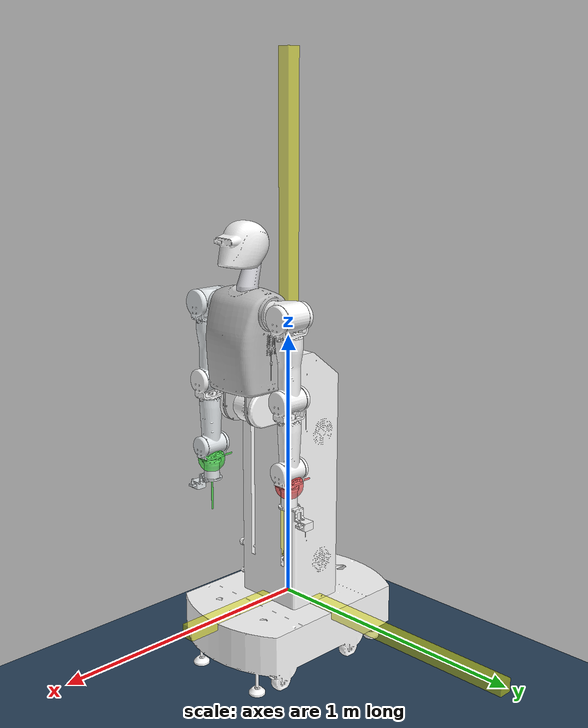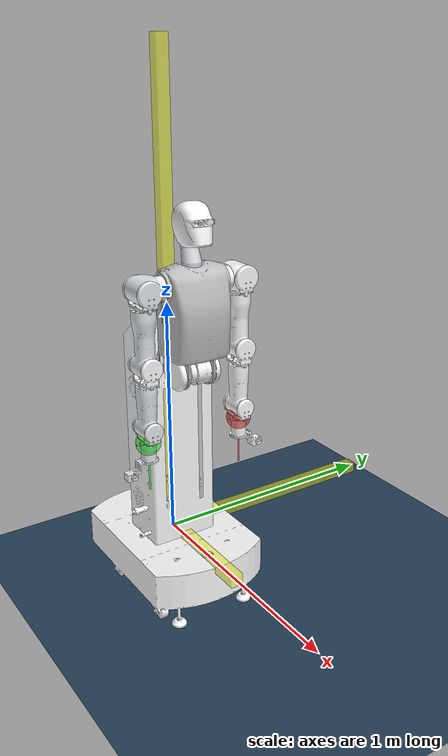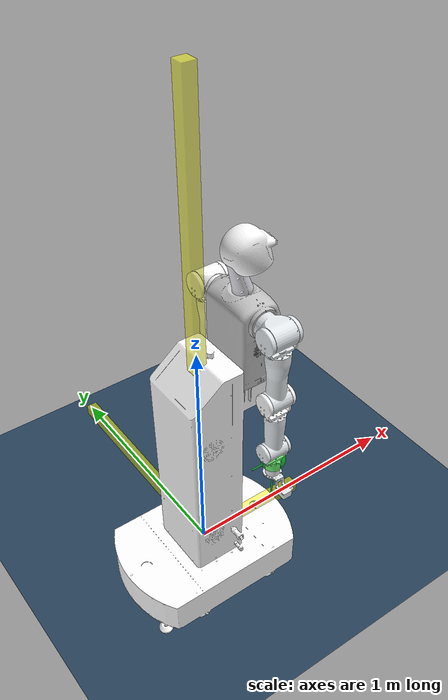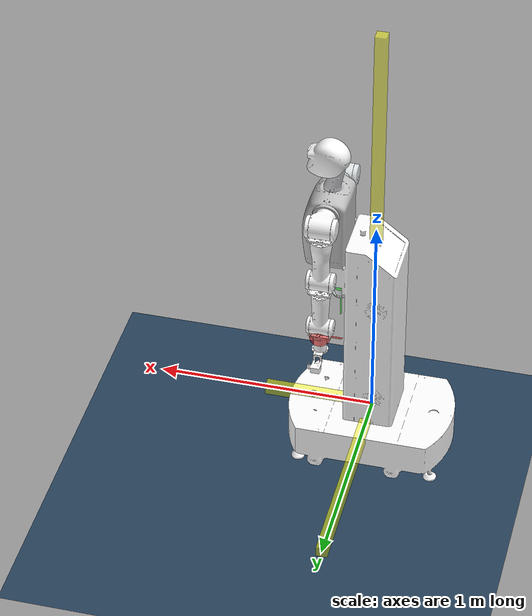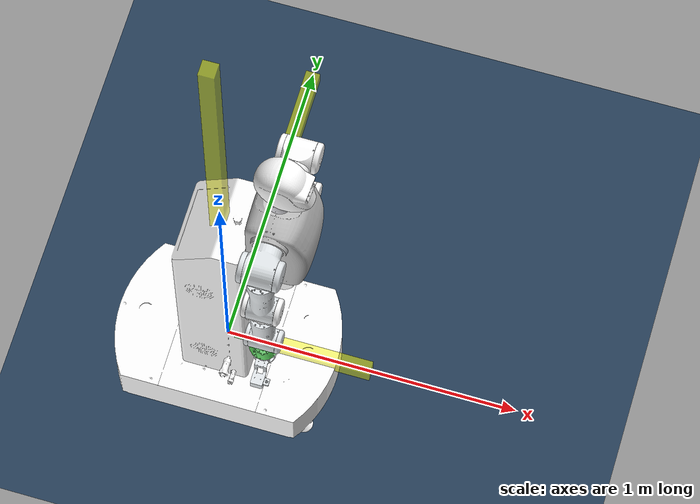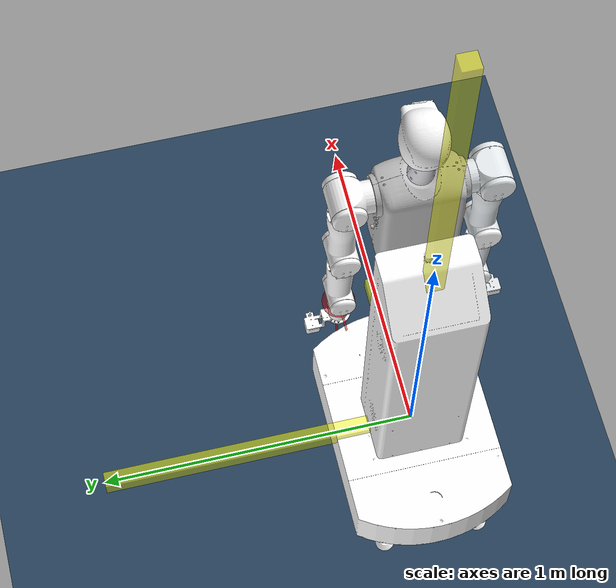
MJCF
<?xml version='1.0' encoding='utf-8'?>
<mujoco model="O2URDFC.SLDASM">
  <compiler angle="radian" />

  <asset>
    <mesh name="base_link" content_type="model/stl" file="base_link.STL" />
    <mesh name="Link1" content_type="model/stl" file="Link1.STL" />
    <mesh name="Link2" content_type="model/stl" file="Link2.STL" />
    <mesh name="Link3" content_type="model/stl" file="Link3.STL" />
    <mesh name="Link4" content_type="model/stl" file="Link4.STL" />
    <mesh name="Link5" content_type="model/stl" file="Link5.STL" />
    <mesh name="Link6" content_type="model/stl" file="Link6.STL" />
    <mesh name="Link7" content_type="model/stl" file="Link7.STL" />
    <mesh name="Link8" content_type="model/stl" file="Link8.STL" />
    <mesh name="Link9" content_type="model/stl" file="Link9.STL" />
    <mesh name="Link10" content_type="model/stl" file="Link10.STL" />
    <mesh name="Link11" content_type="model/stl" file="Link11.STL" />
    <mesh name="Link12" content_type="model/stl" file="Link12.STL" />
    <mesh name="Link13" content_type="model/stl" file="Link13.STL" />
    <mesh name="Link14" content_type="model/stl" file="Link14.STL" />
    <mesh name="Link15" content_type="model/stl" file="Link15.STL" />
    <mesh name="Link16" content_type="model/stl" file="Link16.STL" />
    <mesh name="Link17" content_type="model/stl" file="Link17.STL" />
  </asset>

  <worldbody>
    <site name="world_site_x_axis" pos="0.25 0 0" size="0.25 0.025 0.025"
      rgba="1 1 0 0.5" type="box" />
    <site name="world_site_y_axis" pos="0 0.5 0" size="0.025 0.5 0.025"
      rgba="1 1 0 0.5" type="box" />
    <site name="world_site_z_axis" pos="0 0 1" size="0.025 0.025 1"
      rgba="1 1 0 0.5" type="box" />
    <geom type="mesh" rgba="1 1 1 1" mesh="base_link" />
    <body name="Link1" pos="0.199 0 0.77681" quat="0.707105 -0.707108 0 0">
      <inertial pos="0.00752611 -0.254405 0.003135" quat="0.70709 0.707072 -0.00593553 -0.00610543"
        mass="12.1911" diaginertia="0.0439115 0.0378428 0.0287783" />
      <joint name="1" pos="0 0 0" axis="0 0 1" range="0 1.57" />
      <geom type="mesh" rgba="0.752941 0.752941 0.752941 1" mesh="Link1" />
      <body name="Link2" pos="0 -0.422 0" quat="0.707105 0.707108 0 0">
        <inertial pos="-0.00213458 0.00844409 0.127724"
          quat="0.742462 -0.00916771 -0.0123633 0.669711" mass="0.807285"
          diaginertia="0.000889274 0.000868121 0.000437598" />
        <joint name="2" pos="0 0 0" axis="0 0 1" range="-0.785 0.785" />
        <geom type="mesh" rgba="0.866667 0.866667 0.890196 1" mesh="Link2" />
        <body name="Link3" pos="0.0047908 0.035009 0.15372"
          quat="0.706716 0.706718 -0.0234763 -0.0234762">
          <inertial pos="0.020216 0.00243003 0.0352934" quat="0.152315 0.689888 -0.154256 0.690695"
            mass="0.281394" diaginertia="0.000920227 0.000839269 0.000374135" />
          <joint name="3" pos="0 0 0" axis="0 0 -1" range="0 0.72" />
          <geom type="mesh" rgba="1 1 1 1" mesh="Link3" />
        </body>
      </body>
      <body name="Link4" pos="0 -0.348 -0.1175" quat="-3.67321e-06 -1 0 0">
        <inertial pos="-0.00630002 -4.06344e-05 0.0784944"
          quat="0.996811 -0.0044229 -0.0795597 -0.00422842" mass="2.41207"
          diaginertia="0.00350904 0.00333206 0.00320501" />
        <joint name="4" pos="0 0 0" axis="0 0 -1" range="-2.6 2.6" />
        <geom type="mesh" rgba="0.898039 0.917647 0.929412 1" mesh="Link4" />
        <body name="Link5" pos="0 0 0.08875" quat="0.499998 0.5 0.500002 0.5">
          <inertial pos="-0.0659449 -4.1676e-06 -0.00346396"
            quat="-0.00109142 0.917124 -0.00198237 0.398595" mass="0.601315"
            diaginertia="0.000721915 0.00071654 0.000462243" />
          <joint name="5" pos="0 0 0" axis="0 0 1" range="-1.57 0" />
          <geom type="mesh" rgba="0.898039 0.917647 0.929412 1" mesh="Link5" />
          <body name="Link6" pos="-0.063 0 0" quat="0.499998 -0.5 -0.500002 0.5">
            <inertial pos="3.0795e-05 0.00181741 0.140425"
              quat="0.707347 -0.0116612 0.0114269 0.706678" mass="1.25025"
              diaginertia="0.0055632 0.00546681 0.00170608" />
            <joint name="6" pos="0 0 0" axis="0 0 -1" range="-2.9 2.9" />
            <geom type="mesh" rgba="0.898039 0.917647 0.929412 1" mesh="Link6" />
            <body name="Link7" pos="0 0 0.2255" quat="0.707105 0.707108 0 0">
              <inertial pos="-5.24367e-06 0.0722722 -0.00180561"
                quat="0.48753 0.873106 0.00110407 -0.000331218" mass="0.50143"
                diaginertia="0.000510959 0.000503857 0.000317826" />
              <joint name="7" pos="0 0 0" axis="0 0 -1" range="0 1.57" />
              <geom type="mesh" rgba="1 1 1 1" mesh="Link7" />
              <body name="Link8" pos="0 0.0675 0" quat="0.707105 -0.707108 0 0">
                <inertial pos="4.97711e-05 0.00270107 0.125047"
                  quat="0.709286 -0.0206493 0.0204748 0.704321" mass="0.946458"
                  diaginertia="0.00276262 0.00272498 0.00105491" />
                <joint name="8" pos="0 0 0" axis="0 0 -1" range="-2.9 2.9" />
                <geom type="mesh" rgba="0.898039 0.917647 0.929412 1" mesh="Link8" />
                <body name="Link9" pos="0 0 0.184" quat="0.707105 0.707108 0 0">
                  <inertial pos="-6.31292e-05 0.0645759 -0.000355489"
                    quat="0.41315 0.867817 0.250208 -0.116607" mass="0.652707"
                    diaginertia="0.000395768 0.000393247 0.000313049" />
                  <joint name="9" pos="0 0 0" axis="0 0 1" range="-1.57 1.57" />
                  <geom type="mesh" rgba="0.898039 0.917647 0.929412 1" mesh="Link9" />
                  <body name="Link10" pos="0 0.0575 0" quat="0.707105 -0.707108 0 0">
                    <inertial pos="0.0348721 -0.00101845 0.0716073"
                      quat="0.0133422 0.654276 -0.0646322 0.75337" mass="0.345799"
                      diaginertia="0.000224304 0.000187966 0.000183328" />
                    <joint name="10" pos="0 0 0" axis="0 0 1" range="-2.9 2.9" />
                    <geom type="mesh" rgba="0.898039 0.917647 0.929412 1" mesh="Link10" />
                    <site name="left_eef_site" pos="0 0 0" size="0.05" rgba="0 1 0 0.5"
                      type="sphere" />
                    <site name="left_eef_site_xaxis" pos="0.025 0 0" size="0.025 0.0025 0.0025"
                      rgba="0 1 0 0.5" type="box" />
                    <site name="left_eef_site_yaxis" pos="0 0.05 0" size="0.0025 0.05 0.0025"
                      rgba="0 1 0 0.5" type="box" />
                    <site name="left_eef_site_zaxis" pos="0 0 0.1" size="0.0025 0.0025 0.1"
                      rgba="0 1 0 0.5" type="box" />
                  </body>
                </body>
              </body>
            </body>
          </body>
        </body>
      </body>
      <body name="Link11" pos="0 -0.348 0.1175" quat="-3.67321e-06 0 0 -1">
        <inertial pos="0.0033308 -9.07007e-05 0.0692242"
          quat="0.997958 -0.00541122 0.0636223 0.00187292" mass="1.26708"
          diaginertia="0.002379 0.00212662 0.00200052" />
        <joint name="11" pos="0 0 0" axis="0 0 -1" range="-2.6 2.6" />
        <geom type="mesh" rgba="1 1 1 1" mesh="Link11" />
        <body name="Link12" pos="0 0 0.08875" quat="0.499998 -0.5 -0.500002 0.5">
          <inertial pos="-0.0659449 4.17007e-06 -0.00346396"
            quat="0.00101103 0.917125 0.00178667 0.398594" mass="0.601315"
            diaginertia="0.000721915 0.000716541 0.000462243" />
          <joint name="12" pos="0 0 0" axis="0 0 1" range="0 1.57" />
          <geom type="mesh" rgba="1 1 1 1" mesh="Link12" />
          <body name="Link13" pos="-0.063 0 0" quat="0.499998 -0.5 -0.500002 0.5">
            <inertial pos="-3.07818e-05 0.00181733 0.140425"
              quat="0.706697 -0.0114304 0.0116561 0.707328" mass="1.25024"
              diaginertia="0.00556319 0.00546684 0.00170608" />
            <joint name="13" pos="0 0 0" axis="0 0 1" range="-2.9 2.9" />
            <geom type="mesh" rgba="1 1 1 1" mesh="Link13" />
            <body name="Link14" pos="0 0 0.2255"
              quat="-2.59734e-06 -2.59735e-06 -0.707108 -0.707105">
              <inertial pos="-5.23719e-06 0.0722722 0.0018056"
                quat="0.873106 0.48753 -0.000288054 0.001031" mass="0.50143"
                diaginertia="0.000510959 0.000503857 0.000317826" />
              <joint name="14" pos="0 0 0" axis="0 0 -1" range="0 1.57" />
              <geom type="mesh" rgba="1 1 1 1" mesh="Link14" />
              <body name="Link15" pos="0 0.0675 0"
                quat="-2.59734e-06 -2.59735e-06 -0.707108 -0.707105">
                <inertial pos="-6.46636e-05 0.00269527 0.125118"
                  quat="0.704346 -0.0204773 0.0206447 0.709261" mass="0.946351"
                  diaginertia="0.00276264 0.00272502 0.00105491" />
                <joint name="15" pos="0 0 0" axis="0 0 -1" range="-2.9 2.9" />
                <geom type="mesh" rgba="1 1 1 1" mesh="Link15" />
                <body name="Link16" pos="0 0 0.184" quat="0.707105 0.707108 0 0">
                  <inertial pos="8.2191e-05 0.0357951 -0.00157231"
                    quat="0.615064 -0.252969 0.284094 0.690647" mass="0.203383"
                    diaginertia="0.000176422 0.00017313 0.000101543" />
                  <joint name="16" pos="0 0 0" axis="0 0 1" range="-1.57 1.57" />
                  <geom type="mesh" rgba="1 1 1 1" mesh="Link16" />
                  <body name="Link17" pos="0 0.052 0" quat="0.707105 -0.707108 0 0">
                    <inertial pos="-0.0377108 -0.00109492 0.0832666"
                      quat="-0.0614758 0.768641 -0.00666936 0.636684" mass="0.319236"
                      diaginertia="0.000204291 0.000177569 0.000172931" />
                    <joint name="17" pos="0 0 0" axis="0 0 1" range="-2.9 2.9" />
                    <geom type="mesh" rgba="1 1 1 1" mesh="Link17" />
                    <site name="right_eef_site" pos="0 0 0" size="0.05" rgba="1 0 0 0.5"
                      type="sphere" />
                    <site name="right_eef_site_xaxis" pos="0.025 0 0" size="0.025 0.0025 0.0025"
                      rgba="1 0 0 0.5" type="box" />
                    <site name="right_eef_site_yaxis" pos="0 0.05 0" size="0.0025 0.05 0.0025"
                      rgba="1 0 0 0.5" type="box" />
                    <site name="right_eef_site_zaxis" pos="0 0 0.1" size="0.0025 0.0025 0.1"
                      rgba="1 0 0 0.5" type="box" />
                  </body>
                </body>
              </body>
            </body>
          </body>
        </body>
      </body>
    </body>
  </worldbody>
  <!-- setup scene -->
  <statistic center="1.0 0.7 1.0" extent="0.8" />
  <visual>
    <headlight diffuse="0.6 0.6 0.6" ambient="0.1 0.1 0.1" specular="0.9 0.9 0.9" />
    <rgba haze="0.15 0.25 0.35 1" />
    <global azimuth="-140" elevation="-20" />
  </visual>
  <asset>
    <texture type="skybox" builtin="flat" rgb1="0 0 0" rgb2="0 0 0" width="512" height="3072" />
    <texture type="2d" name="groundplane" builtin="checker" mark="edge" rgb1="0.2 0.3 0.4"
      rgb2="0.1 0.2 0.3" markrgb="0.8 0.8 0.8" width="300" height="300" />
    <material name="groundplane" texture="groundplane" texuniform="true" texrepeat="5 5"
      reflectance="0.2" />
  </asset>
  <worldbody>
    <light pos="1 0 3.5" dir="0 0 -1" directional="true" />
    <geom name="floor" size="0 0 0.05" type="plane" material="groundplane" pos="0 0 -0.25" />
  </worldbody>
</mujoco>
